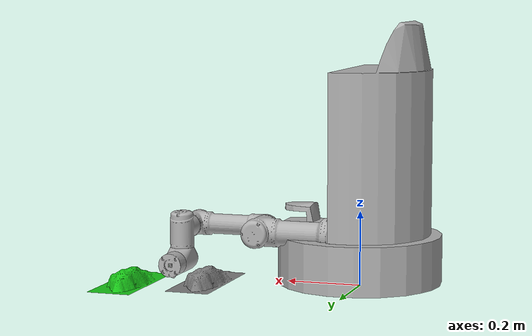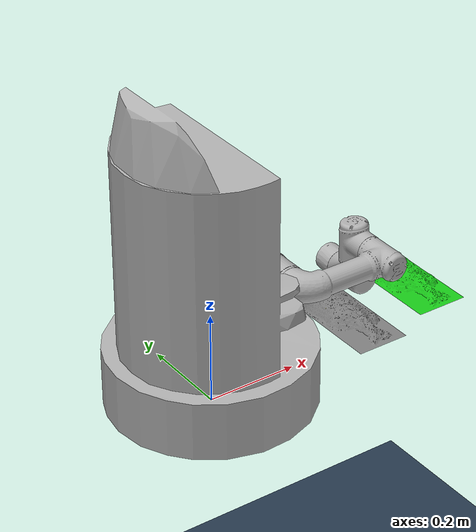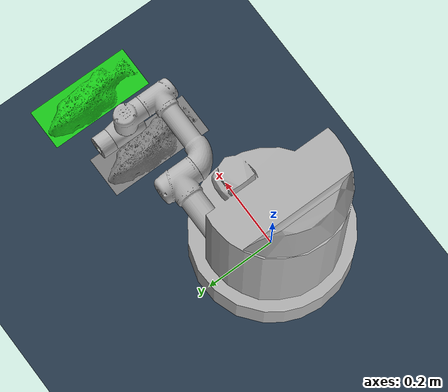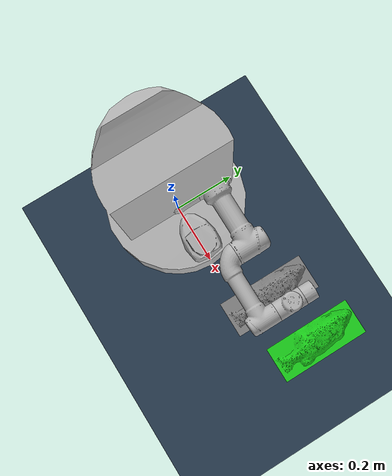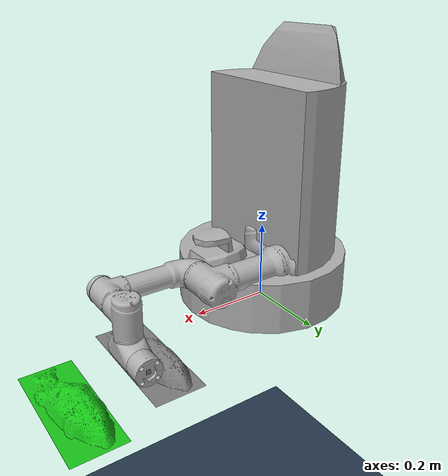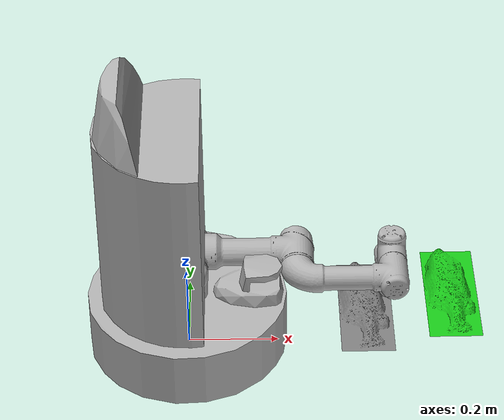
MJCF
<mujoco model='ur3e_fish'>
  <compiler angle='radian' meshdir="./mesh/ur3e/collision/" texturedir="./mesh/ur3e/visual/" />
  <option timestep="0.005" collision='predefined' />

  <asset>
      <mesh name="base"     file="base.stl" />
      <mesh name="shoulder" file="shoulder.stl" />
      <mesh name="upperarm" file="upperarm.stl" />
      <mesh name="forearm"  file="forearm.stl" />
      <mesh name="wrist1"   file="wrist1.stl" />
      <mesh name="wrist2"   file="wrist2.stl" />
      <mesh name="wrist3"   file="wrist3.stl" />
      <mesh name="fish"     file="../../fish/fish.stl" />
      <texture name="texplane" type="2d" builtin="checker" rgb1=".2 .3 .4" rgb2=".1 0.15 0.2" width="512" height="512"/>
      <material name="MatPlane" reflectance="0.3" texture="texplane" texrepeat="1 1" texuniform="true"/>
  </asset>

  <worldbody>
    <!-- Lights -->
    <light name="light0" diffuse="1 1 1" pos="0 0 3" dir="0 0 -1" castshadow="false"/>
    <light name="light1" diffuse="1 1 1" pos="1 -1 -.1" dir="-1 1 1" castshadow="false"/>
    <light name="light2" diffuse="1 1 1" pos="1.5 0 3"  dir="0 0 -1" castshadow="false"/>
    <!-- Environment -->
    <geom name="floor" pos="0 0 -.913" size="5 5 .125" type="plane" material="MatPlane" condim="3"/>
    <body name="table" pos="0.4 0 0" >
      <geom name="table" pos="0.0 0 0" type="plane" size=".5 .6 0.1" group = "1" rgba=".1 .1 .1 1" />
    </body>

    <body name="fish" pos="0.4 0.1 0.02" quat="1 0 0 0" >
      <joint name="fish" type="free" limited="false"/>
        <geom name="fish" pos="0 0 0" quat="1 0 0 0" type="mesh" group="1" mesh="fish" />
        <site name="fish_front" pos="-0.038 0 0.01"  quat="1 0 0 0" type="sphere" size="1e-3" group="2" rgba="1 1 0 1" />
        <site name="fish_rear"  pos="0.031 0 0.01"  quat="0 0 0 1" type="sphere" size="1e-3" group="2" rgba="1 1 0 1" />
    </body>

    <!-- Robot -->
    <body name="base" pos="0 0 0">
        <geom type="mesh" contype="0" conaffinity="0" group="1" rgba="0.7 0.7 0.7 1" mesh="base" />
        <geom type="mesh" rgba="0.7 0.7 0.7 1" mesh="base" />
        <body name="shoulder_link" pos="0 0 0.152">
            <inertial pos="0 0 0" mass="2" diaginertia="0.00809316 0.00809316 0.005625" />
            <joint name="shoulder_pan_joint" pos="0 0 0" axis="0 0 1" limited="true" range="-3.14159 3.14159" />
            <geom type="mesh" contype="0" conaffinity="0" group="1" rgba="0.7 0.7 0.7 1" mesh="shoulder" />
            <geom name="shoulder" type="mesh" rgba="0.7 0.7 0.7 1" mesh="shoulder" />
            <body name="upper_arm_link" pos="0 0.12 0" quat="0.707107 0 0.707107 0">
                <inertial pos="0 0 0.122" mass="3.42" diaginertia="0.0217771 0.0217771 0.00961875" />
                <joint name="shoulder_lift_joint" pos="0 0 0" axis="0 1 0" limited="true" range="-3.14159 3.14159" />
                <geom type="mesh" contype="0" conaffinity="0" group="1" rgba="0.7 0.7 0.7 1" mesh="upperarm" />
                <geom name="upperarm" type="mesh" rgba="0.7 0.7 0.7 1" mesh="upperarm" />
                <body name="forearm_link" pos="0 -0.093 0.244">
                    <inertial pos="0 0 0.1065" mass="1.26" diaginertia="0.00653562 0.00653562 0.00354375" />
                    <joint name="elbow_joint" pos="0 0 0" axis="0 1 0" limited="true" range="-3.14159 3.14159" />
                    <geom type="mesh" contype="0" conaffinity="0" group="1" rgba="0.7 0.7 0.7 1" mesh="forearm" />
                    <geom name="forearm" type="mesh" rgba="0.7 0.7 0.7 1" mesh="forearm" />
                    <body name="wrist_1_link" pos="0 0 0.213" quat="0.707107 0 0.707107 0">
                        <inertial pos="0 0 0" quat="0.5 0.5 -0.5 0.5" mass="0.8" diaginertia="0.00225 0.002085 0.002085" />
                        <joint name="wrist_1_joint" pos="0 0 0" axis="0 1 0" limited="true" range="-3.14159 3.14159" />
                        <geom type="mesh" contype="0" conaffinity="0" group="1" rgba="0.7 0.7 0.7 1" mesh="wrist1" />
                        <geom name="wrist1" type="mesh" rgba="0.7 0.7 0.7 1" mesh="wrist1" />
                        <body name="wrist_2_link" pos="0 0.104 0">
                            <inertial pos="0 0 0" quat="0.5 0.5 -0.5 0.5" mass="0.8" diaginertia="0.00225 0.002085 0.002085" />
                            <joint name="wrist_2_joint" pos="0 0 0" axis="0 0 1" limited="true" range="-3.14159 3.14159" />
                            <geom type="mesh" contype="0" conaffinity="0" group="1" rgba="0.7 0.7 0.7 1" mesh="wrist2" />
                            <geom name="wrist2" type="mesh" rgba="0.7 0.7 0.7 1" mesh="wrist2" />
                            <body name="wrist_3_link" pos="0 0 0.085">
                                <inertial pos="0 0.000233618 0" quat="0.5 0.5 -0.5 0.5" mass="0.351" diaginertia="0.000991097 0.000918909 0.000912204" />
                                <joint name="wrist_3_joint" pos="0 0 0" axis="0 1 0" limited="true" range="-3.14159 3.14159" />
                                <geom type="mesh" contype="0" conaffinity="0" group="1" rgba="0.7 0.7 0.7 1" mesh="wrist3" />
                                <geom name="wrist3" type="mesh" rgba="0.7 0.7 0.7 1" mesh="wrist3" />
                                <geom size="0.005 0.005 0.005" pos="0 0.082 0" quat="0.707107 0 0 0.707107" type="box" group="2" />
                                <site name="end_effector" type="sphere" size="1e-3" pos="0 0.092 0" group="2" rgba="0 1 0 1" />
                            </body>
                        </body>
                    </body>
                </body>
            </body>
        </body>
      </body>

      <!-- Ghost representing desired pose -->
      <body name="ghost" pos="0.6 0.15 0.015" >
          <geom name="ghost" pos="0 0 0" quat="1 0 0 0" type="mesh" contype="0" conaffinity="0" group="1" mesh="fish" rgba="0.1 0.8 0.1 1" />
      </body>
  </worldbody>

  <!-- Actuators -->
  <actuator>
    <motor name="shoulder_pan"  joint="shoulder_pan_joint"  ctrllimited="true" ctrlrange="-330 330" />
    <motor name="shoulder_lift" joint="shoulder_lift_joint" ctrllimited="true" ctrlrange="-330 330" />
    <motor name="elbow"         joint="elbow_joint"         ctrllimited="true" ctrlrange="-150 150" />
    <motor name="wrist_1"       joint="wrist_1_joint"       ctrllimited="true" ctrlrange="-54 54" />
    <motor name="wrist_2"       joint="wrist_2_joint"       ctrllimited="true" ctrlrange="-54 54" />
    <motor name="wrist_3"       joint="wrist_3_joint"       ctrllimited="true" ctrlrange="-54 54" />
  </actuator>

  <!-- Contacts -->
  <contact>
    <pair geom1="wrist1"    geom2="fish" />
    <pair geom1="wrist2"    geom2="fish" />
    <pair geom1="wrist3"    geom2="fish" />
    <pair geom1="upperarm"  geom2="table"  />
    <pair geom1="forearm"   geom2="table"  />
    <pair geom1="wrist1"    geom2="table"  />
    <pair geom1="wrist2"    geom2="table" />
    <pair geom1="wrist3"    geom2="table"  />
    <pair geom1="table"     geom2="fish" />
  </contact>

  <!-- Key frames -->
  <keyframe>
      <key name="init_pose" qpos="0 0.25 0.02 1 0 0 0 0.5 -0.75 1.75 -1 -1 0" />
  </keyframe>

</mujoco>
